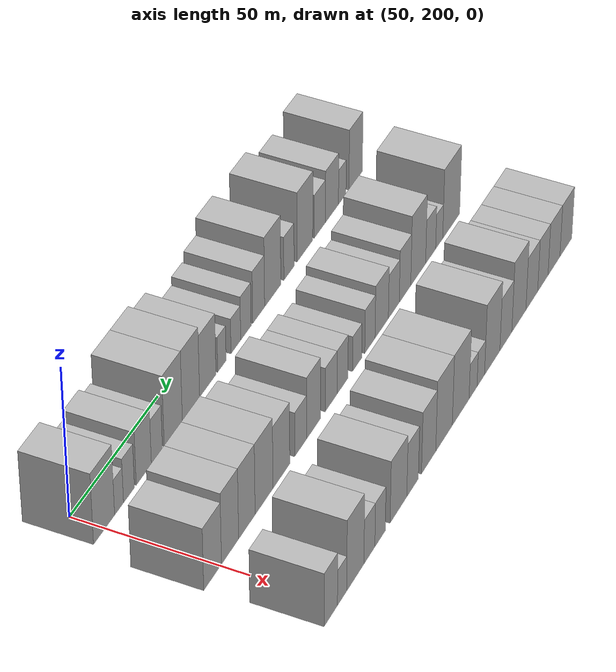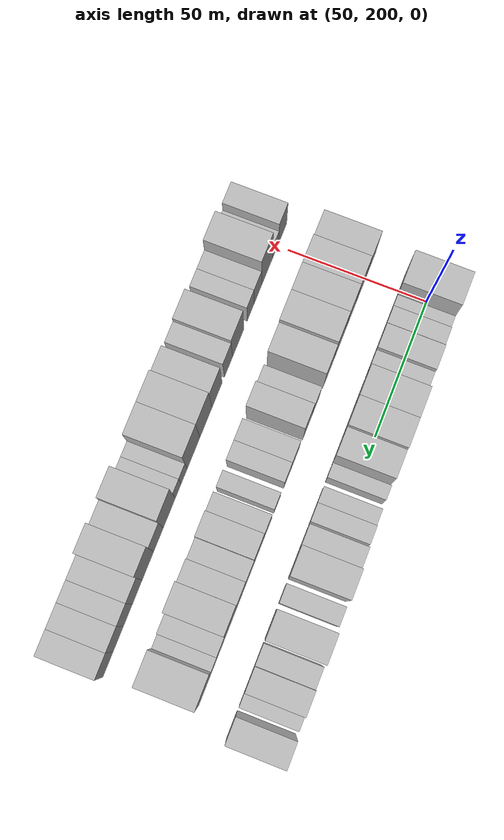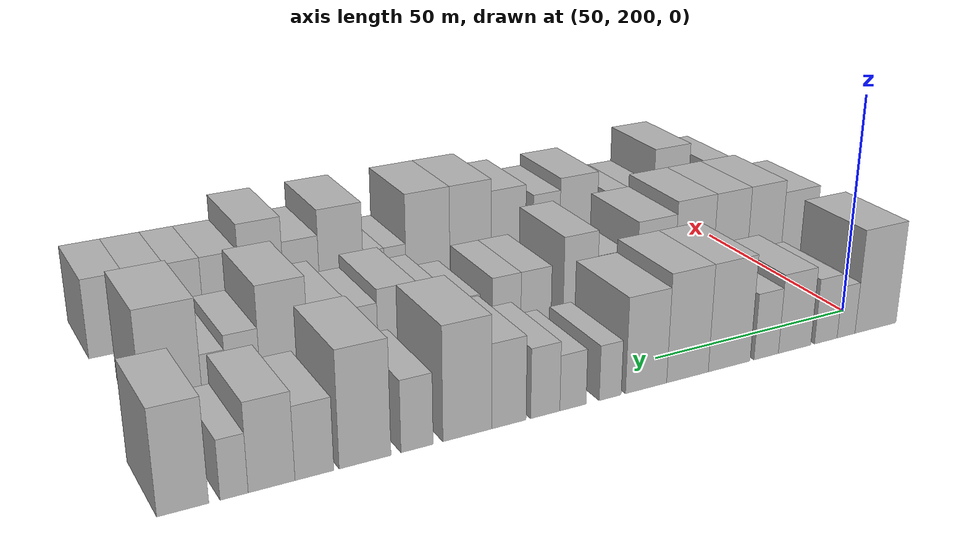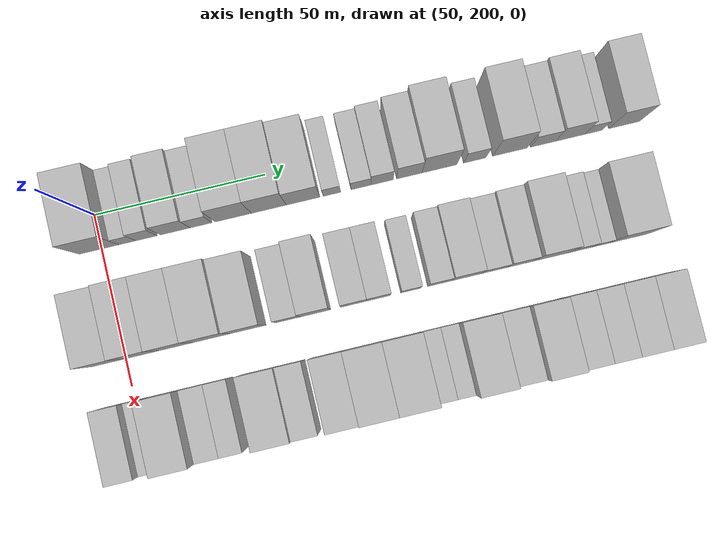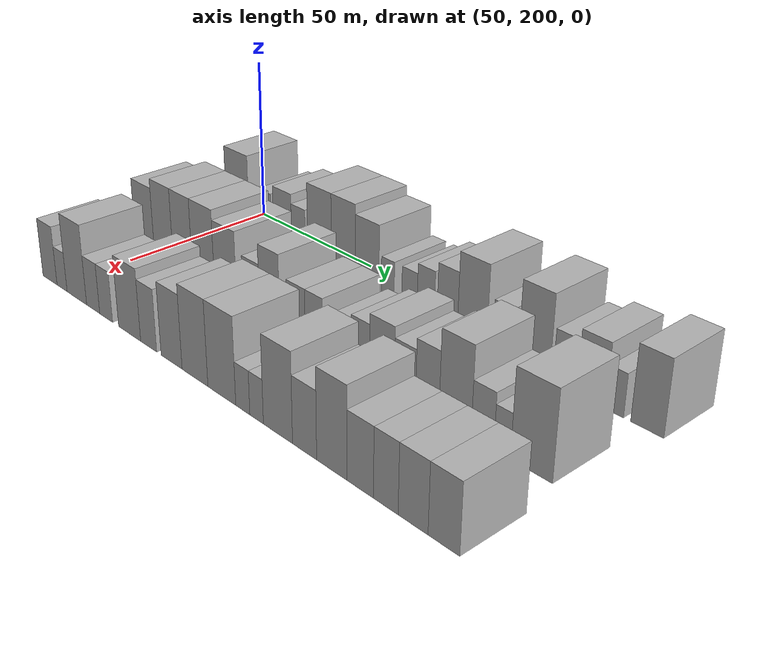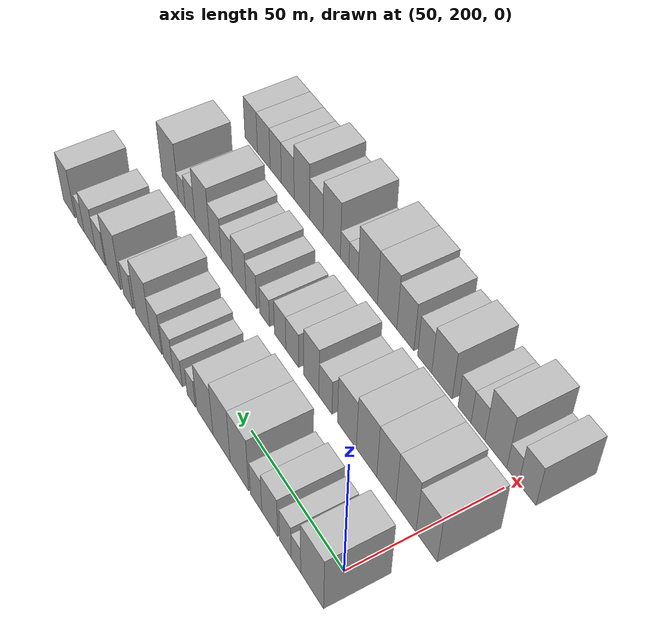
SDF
<sdf version="1.6">
 <world name="default">
  <model name="building_56">
   <static>1</static>
   <pose>50.0000 199.3849 0 0.000000 0.000000 0.000000</pose>
   <link name="link">
    <pose>0 0 12.00 0 0 0</pose>
    <collision name="collision"><geometry><box><size>20.0000 11.5961 24.0000</size></box></geometry></collision>
    <visual name="visual">
     <cast_shadows>0</cast_shadows>
     <geometry><box><size>20.0000 11.5961 24.0000</size></box></geometry>
     <material>
      <script>
       <uri>model://HANNAS_wall/materials/scripts</uri>
       <uri>model://HANNAS_wall/materials/textures</uri>
       <name>vrc/HANNAS_wall</name>
      </script>
     </material>
    </visual>
   </link>
  </model>
  <model name="building_57">
   <static>1</static>
   <pose>50.0000 207.6566 0 0.000000 0.000000 0.000000</pose>
   <link name="link">
    <pose>0 0 6.00 0 0 0</pose>
    <collision name="collision"><geometry><box><size>20.0000 4.9471 12.0000</size></box></geometry></collision>
    <visual name="visual">
     <cast_shadows>0</cast_shadows>
     <geometry><box><size>20.0000 4.9471 12.0000</size></box></geometry>
     <material>
      <script>
       <uri>model://HANNAS_wall/materials/scripts</uri>
       <uri>model://HANNAS_wall/materials/textures</uri>
       <name>vrc/HANNAS_wall</name>
      </script>
     </material>
    </visual>
   </link>
  </model>
  <model name="building_58">
   <static>1</static>
   <pose>50.0000 213.2028 0 0.000000 0.000000 0.000000</pose>
   <link name="link">
    <pose>0 0 7.50 0 0 0</pose>
    <collision name="collision"><geometry><box><size>20.0000 6.1455 15.0000</size></box></geometry></collision>
    <visual name="visual">
     <cast_shadows>0</cast_shadows>
     <geometry><box><size>20.0000 6.1455 15.0000</size></box></geometry>
     <material>
      <script>
       <uri>model://HANNAS_wall/materials/scripts</uri>
       <uri>model://HANNAS_wall/materials/textures</uri>
       <name>vrc/HANNAS_wall</name>
      </script>
     </material>
    </visual>
   </link>
  </model>
  <model name="building_59">
   <static>1</static>
   <pose>50.0000 221.5841 0 0.000000 0.000000 0.000000</pose>
   <link name="link">
    <pose>0 0 9.00 0 0 0</pose>
    <collision name="collision"><geometry><box><size>20.0000 8.6170 18.0000</size></box></geometry></collision>
    <visual name="visual">
     <cast_shadows>0</cast_shadows>
     <geometry><box><size>20.0000 8.6170 18.0000</size></box></geometry>
     <material>
      <script>
       <uri>model://HANNAS_wall/materials/scripts</uri>
       <uri>model://HANNAS_wall/materials/textures</uri>
       <name>vrc/HANNAS_wall</name>
      </script>
     </material>
    </visual>
   </link>
  </model>
  <model name="building_60">
   <static>1</static>
   <pose>50.0000 229.0707 0 0.000000 0.000000 0.000000</pose>
   <link name="link">
    <pose>0 0 7.50 0 0 0</pose>
    <collision name="collision"><geometry><box><size>20.0000 6.3564 15.0000</size></box></geometry></collision>
    <visual name="visual">
     <cast_shadows>0</cast_shadows>
     <geometry><box><size>20.0000 6.3564 15.0000</size></box></geometry>
     <material>
      <script>
       <uri>model://HANNAS_wall/materials/scripts</uri>
       <uri>model://HANNAS_wall/materials/textures</uri>
       <name>vrc/HANNAS_wall</name>
      </script>
     </material>
    </visual>
   </link>
  </model>
  <model name="building_61">
   <static>1</static>
   <pose>50.0000 238.5406 0 0.000000 0.000000 0.000000</pose>
   <link name="link">
    <pose>0 0 12.00 0 0 0</pose>
    <collision name="collision"><geometry><box><size>20.0000 10.5833 24.0000</size></box></geometry></collision>
    <visual name="visual">
     <cast_shadows>0</cast_shadows>
     <geometry><box><size>20.0000 10.5833 24.0000</size></box></geometry>
     <material>
      <script>
       <uri>model://HANNAS_wall/materials/scripts</uri>
       <uri>model://HANNAS_wall/materials/textures</uri>
       <name>vrc/HANNAS_wall</name>
      </script>
     </material>
    </visual>
   </link>
  </model>
  <model name="building_62">
   <static>1</static>
   <pose>50.0000 248.9387 0 0.000000 0.000000 0.000000</pose>
   <link name="link">
    <pose>0 0 12.00 0 0 0</pose>
    <collision name="collision"><geometry><box><size>20.0000 10.2129 24.0000</size></box></geometry></collision>
    <visual name="visual">
     <cast_shadows>0</cast_shadows>
     <geometry><box><size>20.0000 10.2129 24.0000</size></box></geometry>
     <material>
      <script>
       <uri>model://HANNAS_wall/materials/scripts</uri>
       <uri>model://HANNAS_wall/materials/textures</uri>
       <name>vrc/HANNAS_wall</name>
      </script>
     </material>
    </visual>
   </link>
  </model>
  <model name="building_63">
   <static>1</static>
   <pose>50.0000 258.9573 0 0.000000 0.000000 0.000000</pose>
   <link name="link">
    <pose>0 0 10.50 0 0 0</pose>
    <collision name="collision"><geometry><box><size>20.0000 9.8242 21.0000</size></box></geometry></collision>
    <visual name="visual">
     <cast_shadows>0</cast_shadows>
     <geometry><box><size>20.0000 9.8242 21.0000</size></box></geometry>
     <material>
      <script>
       <uri>model://HANNAS_wall/materials/scripts</uri>
       <uri>model://HANNAS_wall/materials/textures</uri>
       <name>vrc/HANNAS_wall</name>
      </script>
     </material>
    </visual>
   </link>
  </model>
  <model name="building_64">
   <static>1</static>
   <pose>50.0000 267.4243 0 0.000000 0.000000 0.000000</pose>
   <link name="link">
    <pose>0 0 6.00 0 0 0</pose>
    <collision name="collision"><geometry><box><size>20.0000 5.1098 12.0000</size></box></geometry></collision>
    <visual name="visual">
     <cast_shadows>0</cast_shadows>
     <geometry><box><size>20.0000 5.1098 12.0000</size></box></geometry>
     <material>
      <script>
       <uri>model://HANNAS_wall/materials/scripts</uri>
       <uri>model://HANNAS_wall/materials/textures</uri>
       <name>vrc/HANNAS_wall</name>
      </script>
     </material>
    </visual>
   </link>
  </model>
  <model name="building_65">
   <static>1</static>
   <pose>50.0000 275.9501 0 0.000000 0.000000 0.000000</pose>
   <link name="link">
    <pose>0 0 6.00 0 0 0</pose>
    <collision name="collision"><geometry><box><size>20.0000 5.9419 12.0000</size></box></geometry></collision>
    <visual name="visual">
     <cast_shadows>0</cast_shadows>
     <geometry><box><size>20.0000 5.9419 12.0000</size></box></geometry>
     <material>
      <script>
       <uri>model://HANNAS_wall/materials/scripts</uri>
       <uri>model://HANNAS_wall/materials/textures</uri>
       <name>vrc/HANNAS_wall</name>
      </script>
     </material>
    </visual>
   </link>
  </model>
  <model name="building_66">
   <static>1</static>
   <pose>50.0000 282.1559 0 0.000000 0.000000 0.000000</pose>
   <link name="link">
    <pose>0 0 7.50 0 0 0</pose>
    <collision name="collision"><geometry><box><size>20.0000 6.4696 15.0000</size></box></geometry></collision>
    <visual name="visual">
     <cast_shadows>0</cast_shadows>
     <geometry><box><size>20.0000 6.4696 15.0000</size></box></geometry>
     <material>
      <script>
       <uri>model://HANNAS_wall/materials/scripts</uri>
       <uri>model://HANNAS_wall/materials/textures</uri>
       <name>vrc/HANNAS_wall</name>
      </script>
     </material>
    </visual>
   </link>
  </model>
  <model name="building_67">
   <static>1</static>
   <pose>50.0000 290.1104 0 0.000000 0.000000 0.000000</pose>
   <link name="link">
    <pose>0 0 9.00 0 0 0</pose>
    <collision name="collision"><geometry><box><size>20.0000 7.4394 18.0000</size></box></geometry></collision>
    <visual name="visual">
     <cast_shadows>0</cast_shadows>
     <geometry><box><size>20.0000 7.4394 18.0000</size></box></geometry>
     <material>
      <script>
       <uri>model://HANNAS_wall/materials/scripts</uri>
       <uri>model://HANNAS_wall/materials/textures</uri>
       <name>vrc/HANNAS_wall</name>
      </script>
     </material>
    </visual>
   </link>
  </model>
  <model name="building_68">
   <static>1</static>
   <pose>50.0000 298.9630 0 0.000000 0.000000 0.000000</pose>
   <link name="link">
    <pose>0 0 12.00 0 0 0</pose>
    <collision name="collision"><geometry><box><size>20.0000 10.2657 24.0000</size></box></geometry></collision>
    <visual name="visual">
     <cast_shadows>0</cast_shadows>
     <geometry><box><size>20.0000 10.2657 24.0000</size></box></geometry>
     <material>
      <script>
       <uri>model://HANNAS_wall/materials/scripts</uri>
       <uri>model://HANNAS_wall/materials/textures</uri>
       <name>vrc/HANNAS_wall</name>
      </script>
     </material>
    </visual>
   </link>
  </model>
  <model name="building_69">
   <static>1</static>
   <pose>50.0000 309.3733 0 0.000000 0.000000 0.000000</pose>
   <link name="link">
    <pose>0 0 7.50 0 0 0</pose>
    <collision name="collision"><geometry><box><size>20.0000 6.5549 15.0000</size></box></geometry></collision>
    <visual name="visual">
     <cast_shadows>0</cast_shadows>
     <geometry><box><size>20.0000 6.5549 15.0000</size></box></geometry>
     <material>
      <script>
       <uri>model://HANNAS_wall/materials/scripts</uri>
       <uri>model://HANNAS_wall/materials/textures</uri>
       <name>vrc/HANNAS_wall</name>
      </script>
     </material>
    </visual>
   </link>
  </model>
  <model name="building_70">
   <static>1</static>
   <pose>50.0000 319.7446 0 0.000000 0.000000 0.000000</pose>
   <link name="link">
    <pose>0 0 12.00 0 0 0</pose>
    <collision name="collision"><geometry><box><size>20.0000 10.1878 24.0000</size></box></geometry></collision>
    <visual name="visual">
     <cast_shadows>0</cast_shadows>
     <geometry><box><size>20.0000 10.1878 24.0000</size></box></geometry>
     <material>
      <script>
       <uri>model://HANNAS_wall/materials/scripts</uri>
       <uri>model://HANNAS_wall/materials/textures</uri>
       <name>vrc/HANNAS_wall</name>
      </script>
     </material>
    </visual>
   </link>
  </model>
  <model name="building_71">
   <static>1</static>
   <pose>50.0000 329.5365 0 0.000000 0.000000 0.000000</pose>
   <link name="link">
    <pose>0 0 7.50 0 0 0</pose>
    <collision name="collision"><geometry><box><size>20.0000 7.3959 15.0000</size></box></geometry></collision>
    <visual name="visual">
     <cast_shadows>0</cast_shadows>
     <geometry><box><size>20.0000 7.3959 15.0000</size></box></geometry>
     <material>
      <script>
       <uri>model://HANNAS_wall/materials/scripts</uri>
       <uri>model://HANNAS_wall/materials/textures</uri>
       <name>vrc/HANNAS_wall</name>
      </script>
     </material>
    </visual>
   </link>
  </model>
  <model name="building_72">
   <static>1</static>
   <pose>50.0000 337.5648 0 0.000000 0.000000 0.000000</pose>
   <link name="link">
    <pose>0 0 9.00 0 0 0</pose>
    <collision name="collision"><geometry><box><size>20.0000 8.6607 18.0000</size></box></geometry></collision>
    <visual name="visual">
     <cast_shadows>0</cast_shadows>
     <geometry><box><size>20.0000 8.6607 18.0000</size></box></geometry>
     <material>
      <script>
       <uri>model://HANNAS_wall/materials/scripts</uri>
       <uri>model://HANNAS_wall/materials/textures</uri>
       <name>vrc/HANNAS_wall</name>
      </script>
     </material>
    </visual>
   </link>
  </model>
  <model name="building_73">
   <static>1</static>
   <pose>50.0000 344.4485 0 0.000000 0.000000 0.000000</pose>
   <link name="link">
    <pose>0 0 6.00 0 0 0</pose>
    <collision name="collision"><geometry><box><size>20.0000 5.1066 12.0000</size></box></geometry></collision>
    <visual name="visual">
     <cast_shadows>0</cast_shadows>
     <geometry><box><size>20.0000 5.1066 12.0000</size></box></geometry>
     <material>
      <script>
       <uri>model://HANNAS_wall/materials/scripts</uri>
       <uri>model://HANNAS_wall/materials/textures</uri>
       <name>vrc/HANNAS_wall</name>
      </script>
     </material>
    </visual>
   </link>
  </model>
  <model name="building_74">
   <static>1</static>
   <pose>50.0000 353.5780 0 0.000000 0.000000 0.000000</pose>
   <link name="link">
    <pose>0 0 10.50 0 0 0</pose>
    <collision name="collision"><geometry><box><size>20.0000 9.1524 21.0000</size></box></geometry></collision>
    <visual name="visual">
     <cast_shadows>0</cast_shadows>
     <geometry><box><size>20.0000 9.1524 21.0000</size></box></geometry>
     <material>
      <script>
       <uri>model://HANNAS_wall/materials/scripts</uri>
       <uri>model://HANNAS_wall/materials/textures</uri>
       <name>vrc/HANNAS_wall</name>
      </script>
     </material>
    </visual>
   </link>
  </model>
  <model name="building_130">
   <static>1</static>
   <pose>82.0000 195.4188 0 0.000000 0.000000 0.000000</pose>
   <link name="link">
    <pose>0 0 10.50 0 0 0</pose>
    <collision name="collision"><geometry><box><size>20.0000 10.0955 21.0000</size></box></geometry></collision>
    <visual name="visual">
     <cast_shadows>0</cast_shadows>
     <geometry><box><size>20.0000 10.0955 21.0000</size></box></geometry>
     <material>
      <script>
       <uri>model://HANNAS_wall/materials/scripts</uri>
       <uri>model://HANNAS_wall/materials/textures</uri>
       <name>vrc/HANNAS_wall</name>
      </script>
     </material>
    </visual>
   </link>
  </model>
  <model name="building_131">
   <static>1</static>
   <pose>82.0000 205.4018 0 0.000000 0.000000 0.000000</pose>
   <link name="link">
    <pose>0 0 12.00 0 0 0</pose>
    <collision name="collision"><geometry><box><size>20.0000 9.8704 24.0000</size></box></geometry></collision>
    <visual name="visual">
     <cast_shadows>0</cast_shadows>
     <geometry><box><size>20.0000 9.8704 24.0000</size></box></geometry>
     <material>
      <script>
       <uri>model://HANNAS_wall/materials/scripts</uri>
       <uri>model://HANNAS_wall/materials/textures</uri>
       <name>vrc/HANNAS_wall</name>
      </script>
     </material>
    </visual>
   </link>
  </model>
  <model name="building_132">
   <static>1</static>
   <pose>82.0000 215.1493 0 0.000000 0.000000 0.000000</pose>
   <link name="link">
    <pose>0 0 12.00 0 0 0</pose>
    <collision name="collision"><geometry><box><size>20.0000 9.6247 24.0000</size></box></geometry></collision>
    <visual name="visual">
     <cast_shadows>0</cast_shadows>
     <geometry><box><size>20.0000 9.6247 24.0000</size></box></geometry>
     <material>
      <script>
       <uri>model://HANNAS_wall/materials/scripts</uri>
       <uri>model://HANNAS_wall/materials/textures</uri>
       <name>vrc/HANNAS_wall</name>
      </script>
     </material>
    </visual>
   </link>
  </model>
  <model name="building_133">
   <static>1</static>
   <pose>82.0000 225.2571 0 0.000000 0.000000 0.000000</pose>
   <link name="link">
    <pose>0 0 12.00 0 0 0</pose>
    <collision name="collision"><geometry><box><size>20.0000 10.5908 24.0000</size></box></geometry></collision>
    <visual name="visual">
     <cast_shadows>0</cast_shadows>
     <geometry><box><size>20.0000 10.5908 24.0000</size></box></geometry>
     <material>
      <script>
       <uri>model://HANNAS_wall/materials/scripts</uri>
       <uri>model://HANNAS_wall/materials/textures</uri>
       <name>vrc/HANNAS_wall</name>
      </script>
     </material>
    </visual>
   </link>
  </model>
  <model name="building_134">
   <static>1</static>
   <pose>82.0000 235.6216 0 0.000000 0.000000 0.000000</pose>
   <link name="link">
    <pose>0 0 10.50 0 0 0</pose>
    <collision name="collision"><geometry><box><size>20.0000 10.1381 21.0000</size></box></geometry></collision>
    <visual name="visual">
     <cast_shadows>0</cast_shadows>
     <geometry><box><size>20.0000 10.1381 21.0000</size></box></geometry>
     <material>
      <script>
       <uri>model://HANNAS_wall/materials/scripts</uri>
       <uri>model://HANNAS_wall/materials/textures</uri>
       <name>vrc/HANNAS_wall</name>
      </script>
     </material>
    </visual>
   </link>
  </model>
  <model name="building_135">
   <static>1</static>
   <pose>82.0000 247.3060 0 0.000000 0.000000 0.000000</pose>
   <link name="link">
    <pose>0 0 7.50 0 0 0</pose>
    <collision name="collision"><geometry><box><size>20.0000 7.2306 15.0000</size></box></geometry></collision>
    <visual name="visual">
     <cast_shadows>0</cast_shadows>
     <geometry><box><size>20.0000 7.2306 15.0000</size></box></geometry>
     <material>
      <script>
       <uri>model://HANNAS_wall/materials/scripts</uri>
       <uri>model://HANNAS_wall/materials/textures</uri>
       <name>vrc/HANNAS_wall</name>
      </script>
     </material>
    </visual>
   </link>
  </model>
  <model name="building_136">
   <static>1</static>
   <pose>82.0000 255.2145 0 0.000000 0.000000 0.000000</pose>
   <link name="link">
    <pose>0 0 10.50 0 0 0</pose>
    <collision name="collision"><geometry><box><size>20.0000 8.5865 21.0000</size></box></geometry></collision>
    <visual name="visual">
     <cast_shadows>0</cast_shadows>
     <geometry><box><size>20.0000 8.5865 21.0000</size></box></geometry>
     <material>
      <script>
       <uri>model://HANNAS_wall/materials/scripts</uri>
       <uri>model://HANNAS_wall/materials/textures</uri>
       <name>vrc/HANNAS_wall</name>
      </script>
     </material>
    </visual>
   </link>
  </model>
  <model name="building_137">
   <static>1</static>
   <pose>82.0000 266.2501 0 0.000000 0.000000 0.000000</pose>
   <link name="link">
    <pose>0 0 7.50 0 0 0</pose>
    <collision name="collision"><geometry><box><size>20.0000 7.4847 15.0000</size></box></geometry></collision>
    <visual name="visual">
     <cast_shadows>0</cast_shadows>
     <geometry><box><size>20.0000 7.4847 15.0000</size></box></geometry>
     <material>
      <script>
       <uri>model://HANNAS_wall/materials/scripts</uri>
       <uri>model://HANNAS_wall/materials/textures</uri>
       <name>vrc/HANNAS_wall</name>
      </script>
     </material>
    </visual>
   </link>
  </model>
  <model name="building_138">
   <static>1</static>
   <pose>82.0000 273.4355 0 0.000000 0.000000 0.000000</pose>
   <link name="link">
    <pose>0 0 7.50 0 0 0</pose>
    <collision name="collision"><geometry><box><size>20.0000 6.8861 15.0000</size></box></geometry></collision>
    <visual name="visual">
     <cast_shadows>0</cast_shadows>
     <geometry><box><size>20.0000 6.8861 15.0000</size></box></geometry>
     <material>
      <script>
       <uri>model://HANNAS_wall/materials/scripts</uri>
       <uri>model://HANNAS_wall/materials/textures</uri>
       <name>vrc/HANNAS_wall</name>
      </script>
     </material>
    </visual>
   </link>
  </model>
  <model name="building_139">
   <static>1</static>
   <pose>82.0000 282.8169 0 0.000000 0.000000 0.000000</pose>
   <link name="link">
    <pose>0 0 6.00 0 0 0</pose>
    <collision name="collision"><geometry><box><size>20.0000 5.8766 12.0000</size></box></geometry></collision>
    <visual name="visual">
     <cast_shadows>0</cast_shadows>
     <geometry><box><size>20.0000 5.8766 12.0000</size></box></geometry>
     <material>
      <script>
       <uri>model://HANNAS_wall/materials/scripts</uri>
       <uri>model://HANNAS_wall/materials/textures</uri>
       <name>vrc/HANNAS_wall</name>
      </script>
     </material>
    </visual>
   </link>
  </model>
  <model name="building_140">
   <static>1</static>
   <pose>82.0000 291.0930 0 0.000000 0.000000 0.000000</pose>
   <link name="link">
    <pose>0 0 7.50 0 0 0</pose>
    <collision name="collision"><geometry><box><size>20.0000 6.6755 15.0000</size></box></geometry></collision>
    <visual name="visual">
     <cast_shadows>0</cast_shadows>
     <geometry><box><size>20.0000 6.6755 15.0000</size></box></geometry>
     <material>
      <script>
       <uri>model://HANNAS_wall/materials/scripts</uri>
       <uri>model://HANNAS_wall/materials/textures</uri>
       <name>vrc/HANNAS_wall</name>
      </script>
     </material>
    </visual>
   </link>
  </model>
  <model name="building_141">
   <static>1</static>
   <pose>82.0000 298.8240 0 0.000000 0.000000 0.000000</pose>
   <link name="link">
    <pose>0 0 9.00 0 0 0</pose>
    <collision name="collision"><geometry><box><size>20.0000 8.7866 18.0000</size></box></geometry></collision>
    <visual name="visual">
     <cast_shadows>0</cast_shadows>
     <geometry><box><size>20.0000 8.7866 18.0000</size></box></geometry>
     <material>
      <script>
       <uri>model://HANNAS_wall/materials/scripts</uri>
       <uri>model://HANNAS_wall/materials/textures</uri>
       <name>vrc/HANNAS_wall</name>
      </script>
     </material>
    </visual>
   </link>
  </model>
  <model name="building_142">
   <static>1</static>
   <pose>82.0000 306.8493 0 0.000000 0.000000 0.000000</pose>
   <link name="link">
    <pose>0 0 7.50 0 0 0</pose>
    <collision name="collision"><geometry><box><size>20.0000 7.2640 15.0000</size></box></geometry></collision>
    <visual name="visual">
     <cast_shadows>0</cast_shadows>
     <geometry><box><size>20.0000 7.2640 15.0000</size></box></geometry>
     <material>
      <script>
       <uri>model://HANNAS_wall/materials/scripts</uri>
       <uri>model://HANNAS_wall/materials/textures</uri>
       <name>vrc/HANNAS_wall</name>
      </script>
     </material>
    </visual>
   </link>
  </model>
  <model name="building_143">
   <static>1</static>
   <pose>82.0000 314.3431 0 0.000000 0.000000 0.000000</pose>
   <link name="link">
    <pose>0 0 9.00 0 0 0</pose>
    <collision name="collision"><geometry><box><size>20.0000 7.7236 18.0000</size></box></geometry></collision>
    <visual name="visual">
     <cast_shadows>0</cast_shadows>
     <geometry><box><size>20.0000 7.7236 18.0000</size></box></geometry>
     <material>
      <script>
       <uri>model://HANNAS_wall/materials/scripts</uri>
       <uri>model://HANNAS_wall/materials/textures</uri>
       <name>vrc/HANNAS_wall</name>
      </script>
     </material>
    </visual>
   </link>
  </model>
  <model name="building_144">
   <static>1</static>
   <pose>82.0000 323.2901 0 0.000000 0.000000 0.000000</pose>
   <link name="link">
    <pose>0 0 12.00 0 0 0</pose>
    <collision name="collision"><geometry><box><size>20.0000 10.1705 24.0000</size></box></geometry></collision>
    <visual name="visual">
     <cast_shadows>0</cast_shadows>
     <geometry><box><size>20.0000 10.1705 24.0000</size></box></geometry>
     <material>
      <script>
       <uri>model://HANNAS_wall/materials/scripts</uri>
       <uri>model://HANNAS_wall/materials/textures</uri>
       <name>vrc/HANNAS_wall</name>
      </script>
     </material>
    </visual>
   </link>
  </model>
  <model name="building_145">
   <static>1</static>
   <pose>82.0000 331.8244 0 0.000000 0.000000 0.000000</pose>
   <link name="link">
    <pose>0 0 7.50 0 0 0</pose>
    <collision name="collision"><geometry><box><size>20.0000 6.8981 15.0000</size></box></geometry></collision>
    <visual name="visual">
     <cast_shadows>0</cast_shadows>
     <geometry><box><size>20.0000 6.8981 15.0000</size></box></geometry>
     <material>
      <script>
       <uri>model://HANNAS_wall/materials/scripts</uri>
       <uri>model://HANNAS_wall/materials/textures</uri>
       <name>vrc/HANNAS_wall</name>
      </script>
     </material>
    </visual>
   </link>
  </model>
  <model name="building_146">
   <static>1</static>
   <pose>82.0000 337.7239 0 0.000000 0.000000 0.000000</pose>
   <link name="link">
    <pose>0 0 6.00 0 0 0</pose>
    <collision name="collision"><geometry><box><size>20.0000 4.9009 12.0000</size></box></geometry></collision>
    <visual name="visual">
     <cast_shadows>0</cast_shadows>
     <geometry><box><size>20.0000 4.9009 12.0000</size></box></geometry>
     <material>
      <script>
       <uri>model://HANNAS_wall/materials/scripts</uri>
       <uri>model://HANNAS_wall/materials/textures</uri>
       <name>vrc/HANNAS_wall</name>
      </script>
     </material>
    </visual>
   </link>
  </model>
  <model name="building_147">
   <static>1</static>
   <pose>82.0000 346.1405 0 0.000000 0.000000 0.000000</pose>
   <link name="link">
    <pose>0 0 12.00 0 0 0</pose>
    <collision name="collision"><geometry><box><size>20.0000 11.9322 24.0000</size></box></geometry></collision>
    <visual name="visual">
     <cast_shadows>0</cast_shadows>
     <geometry><box><size>20.0000 11.9322 24.0000</size></box></geometry>
     <material>
      <script>
       <uri>model://HANNAS_wall/materials/scripts</uri>
       <uri>model://HANNAS_wall/materials/textures</uri>
       <name>vrc/HANNAS_wall</name>
      </script>
     </material>
    </visual>
   </link>
  </model>
  <model name="building_205">
   <static>1</static>
   <pose>114.0000 195.2941 0 0.000000 0.000000 0.000000</pose>
   <link name="link">
    <pose>0 0 9.00 0 0 0</pose>
    <collision name="collision"><geometry><box><size>20.0000 7.8704 18.0000</size></box></geometry></collision>
    <visual name="visual">
     <cast_shadows>0</cast_shadows>
     <geometry><box><size>20.0000 7.8704 18.0000</size></box></geometry>
     <material>
      <script>
       <uri>model://HANNAS_wall/materials/scripts</uri>
       <uri>model://HANNAS_wall/materials/textures</uri>
       <name>vrc/HANNAS_wall</name>
      </script>
     </material>
    </visual>
   </link>
  </model>
  <model name="building_206">
   <static>1</static>
   <pose>114.0000 201.9797 0 0.000000 0.000000 0.000000</pose>
   <link name="link">
    <pose>0 0 6.00 0 0 0</pose>
    <collision name="collision"><geometry><box><size>20.0000 5.5008 12.0000</size></box></geometry></collision>
    <visual name="visual">
     <cast_shadows>0</cast_shadows>
     <geometry><box><size>20.0000 5.5008 12.0000</size></box></geometry>
     <material>
      <script>
       <uri>model://HANNAS_wall/materials/scripts</uri>
       <uri>model://HANNAS_wall/materials/textures</uri>
       <name>vrc/HANNAS_wall</name>
      </script>
     </material>
    </visual>
   </link>
  </model>
  <model name="building_207">
   <static>1</static>
   <pose>114.0000 209.9341 0 0.000000 0.000000 0.000000</pose>
   <link name="link">
    <pose>0 0 12.00 0 0 0</pose>
    <collision name="collision"><geometry><box><size>20.0000 10.4080 24.0000</size></box></geometry></collision>
    <visual name="visual">
     <cast_shadows>0</cast_shadows>
     <geometry><box><size>20.0000 10.4080 24.0000</size></box></geometry>
     <material>
      <script>
       <uri>model://HANNAS_wall/materials/scripts</uri>
       <uri>model://HANNAS_wall/materials/textures</uri>
       <name>vrc/HANNAS_wall</name>
      </script>
     </material>
    </visual>
   </link>
  </model>
  <model name="building_208">
   <static>1</static>
   <pose>114.0000 218.5087 0 0.000000 0.000000 0.000000</pose>
   <link name="link">
    <pose>0 0 7.50 0 0 0</pose>
    <collision name="collision"><geometry><box><size>20.0000 6.7413 15.0000</size></box></geometry></collision>
    <visual name="visual">
     <cast_shadows>0</cast_shadows>
     <geometry><box><size>20.0000 6.7413 15.0000</size></box></geometry>
     <material>
      <script>
       <uri>model://HANNAS_wall/materials/scripts</uri>
       <uri>model://HANNAS_wall/materials/textures</uri>
       <name>vrc/HANNAS_wall</name>
      </script>
     </material>
    </visual>
   </link>
  </model>
  <model name="building_209">
   <static>1</static>
   <pose>114.0000 225.0927 0 0.000000 0.000000 0.000000</pose>
   <link name="link">
    <pose>0 0 7.50 0 0 0</pose>
    <collision name="collision"><geometry><box><size>20.0000 6.4266 15.0000</size></box></geometry></collision>
    <visual name="visual">
     <cast_shadows>0</cast_shadows>
     <geometry><box><size>20.0000 6.4266 15.0000</size></box></geometry>
     <material>
      <script>
       <uri>model://HANNAS_wall/materials/scripts</uri>
       <uri>model://HANNAS_wall/materials/textures</uri>
       <name>vrc/HANNAS_wall</name>
      </script>
     </material>
    </visual>
   </link>
  </model>
  <model name="building_210">
   <static>1</static>
   <pose>114.0000 236.5462 0 0.000000 0.000000 0.000000</pose>
   <link name="link">
    <pose>0 0 10.50 0 0 0</pose>
    <collision name="collision"><geometry><box><size>20.0000 10.4806 21.0000</size></box></geometry></collision>
    <visual name="visual">
     <cast_shadows>0</cast_shadows>
     <geometry><box><size>20.0000 10.4806 21.0000</size></box></geometry>
     <material>
      <script>
       <uri>model://HANNAS_wall/materials/scripts</uri>
       <uri>model://HANNAS_wall/materials/textures</uri>
       <name>vrc/HANNAS_wall</name>
      </script>
     </material>
    </visual>
   </link>
  </model>
  <model name="building_211">
   <static>1</static>
   <pose>114.0000 245.4736 0 0.000000 0.000000 0.000000</pose>
   <link name="link">
    <pose>0 0 9.00 0 0 0</pose>
    <collision name="collision"><geometry><box><size>20.0000 7.3740 18.0000</size></box></geometry></collision>
    <visual name="visual">
     <cast_shadows>0</cast_shadows>
     <geometry><box><size>20.0000 7.3740 18.0000</size></box></geometry>
     <material>
      <script>
       <uri>model://HANNAS_wall/materials/scripts</uri>
       <uri>model://HANNAS_wall/materials/textures</uri>
       <name>vrc/HANNAS_wall</name>
      </script>
     </material>
    </visual>
   </link>
  </model>
  <model name="building_212">
   <static>1</static>
   <pose>114.0000 255.7742 0 0.000000 0.000000 0.000000</pose>
   <link name="link">
    <pose>0 0 10.50 0 0 0</pose>
    <collision name="collision"><geometry><box><size>20.0000 9.2272 21.0000</size></box></geometry></collision>
    <visual name="visual">
     <cast_shadows>0</cast_shadows>
     <geometry><box><size>20.0000 9.2272 21.0000</size></box></geometry>
     <material>
      <script>
       <uri>model://HANNAS_wall/materials/scripts</uri>
       <uri>model://HANNAS_wall/materials/textures</uri>
       <name>vrc/HANNAS_wall</name>
      </script>
     </material>
    </visual>
   </link>
  </model>
  <model name="building_213">
   <static>1</static>
   <pose>114.0000 265.8098 0 0.000000 0.000000 0.000000</pose>
   <link name="link">
    <pose>0 0 12.00 0 0 0</pose>
    <collision name="collision"><geometry><box><size>20.0000 10.8441 24.0000</size></box></geometry></collision>
    <visual name="visual">
     <cast_shadows>0</cast_shadows>
     <geometry><box><size>20.0000 10.8441 24.0000</size></box></geometry>
     <material>
      <script>
       <uri>model://HANNAS_wall/materials/scripts</uri>
       <uri>model://HANNAS_wall/materials/textures</uri>
       <name>vrc/HANNAS_wall</name>
      </script>
     </material>
    </visual>
   </link>
  </model>
  <model name="building_214">
   <static>1</static>
   <pose>114.0000 276.8120 0 0.000000 0.000000 0.000000</pose>
   <link name="link">
    <pose>0 0 12.00 0 0 0</pose>
    <collision name="collision"><geometry><box><size>20.0000 11.1604 24.0000</size></box></geometry></collision>
    <visual name="visual">
     <cast_shadows>0</cast_shadows>
     <geometry><box><size>20.0000 11.1604 24.0000</size></box></geometry>
     <material>
      <script>
       <uri>model://HANNAS_wall/materials/scripts</uri>
       <uri>model://HANNAS_wall/materials/textures</uri>
       <name>vrc/HANNAS_wall</name>
      </script>
     </material>
    </visual>
   </link>
  </model>
  <model name="building_215">
   <static>1</static>
   <pose>114.0000 285.0933 0 0.000000 0.000000 0.000000</pose>
   <link name="link">
    <pose>0 0 6.00 0 0 0</pose>
    <collision name="collision"><geometry><box><size>20.0000 5.4021 12.0000</size></box></geometry></collision>
    <visual name="visual">
     <cast_shadows>0</cast_shadows>
     <geometry><box><size>20.0000 5.4021 12.0000</size></box></geometry>
     <material>
      <script>
       <uri>model://HANNAS_wall/materials/scripts</uri>
       <uri>model://HANNAS_wall/materials/textures</uri>
       <name>vrc/HANNAS_wall</name>
      </script>
     </material>
    </visual>
   </link>
  </model>
  <model name="building_216">
   <static>1</static>
   <pose>114.0000 290.3398 0 0.000000 0.000000 0.000000</pose>
   <link name="link">
    <pose>0 0 6.00 0 0 0</pose>
    <collision name="collision"><geometry><box><size>20.0000 5.0908 12.0000</size></box></geometry></collision>
    <visual name="visual">
     <cast_shadows>0</cast_shadows>
     <geometry><box><size>20.0000 5.0908 12.0000</size></box></geometry>
     <material>
      <script>
       <uri>model://HANNAS_wall/materials/scripts</uri>
       <uri>model://HANNAS_wall/materials/textures</uri>
       <name>vrc/HANNAS_wall</name>
      </script>
     </material>
    </visual>
   </link>
  </model>
  <model name="building_217">
   <static>1</static>
   <pose>114.0000 298.1551 0 0.000000 0.000000 0.000000</pose>
   <link name="link">
    <pose>0 0 12.00 0 0 0</pose>
    <collision name="collision"><geometry><box><size>20.0000 10.5400 24.0000</size></box></geometry></collision>
    <visual name="visual">
     <cast_shadows>0</cast_shadows>
     <geometry><box><size>20.0000 10.5400 24.0000</size></box></geometry>
     <material>
      <script>
       <uri>model://HANNAS_wall/materials/scripts</uri>
       <uri>model://HANNAS_wall/materials/textures</uri>
       <name>vrc/HANNAS_wall</name>
      </script>
     </material>
    </visual>
   </link>
  </model>
  <model name="building_218">
   <static>1</static>
   <pose>114.0000 307.5886 0 0.000000 0.000000 0.000000</pose>
   <link name="link">
    <pose>0 0 9.00 0 0 0</pose>
    <collision name="collision"><geometry><box><size>20.0000 8.3268 18.0000</size></box></geometry></collision>
    <visual name="visual">
     <cast_shadows>0</cast_shadows>
     <geometry><box><size>20.0000 8.3268 18.0000</size></box></geometry>
     <material>
      <script>
       <uri>model://HANNAS_wall/materials/scripts</uri>
       <uri>model://HANNAS_wall/materials/textures</uri>
       <name>vrc/HANNAS_wall</name>
      </script>
     </material>
    </visual>
   </link>
  </model>
  <model name="building_219">
   <static>1</static>
   <pose>114.0000 316.7141 0 0.000000 0.000000 0.000000</pose>
   <link name="link">
    <pose>0 0 12.00 0 0 0</pose>
    <collision name="collision"><geometry><box><size>20.0000 9.9242 24.0000</size></box></geometry></collision>
    <visual name="visual">
     <cast_shadows>0</cast_shadows>
     <geometry><box><size>20.0000 9.9242 24.0000</size></box></geometry>
     <material>
      <script>
       <uri>model://HANNAS_wall/materials/scripts</uri>
       <uri>model://HANNAS_wall/materials/textures</uri>
       <name>vrc/HANNAS_wall</name>
      </script>
     </material>
    </visual>
   </link>
  </model>
  <model name="building_220">
   <static>1</static>
   <pose>114.0000 325.8768 0 0.000000 0.000000 0.000000</pose>
   <link name="link">
    <pose>0 0 9.00 0 0 0</pose>
    <collision name="collision"><geometry><box><size>20.0000 8.4014 18.0000</size></box></geometry></collision>
    <visual name="visual">
     <cast_shadows>0</cast_shadows>
     <geometry><box><size>20.0000 8.4014 18.0000</size></box></geometry>
     <material>
      <script>
       <uri>model://HANNAS_wall/materials/scripts</uri>
       <uri>model://HANNAS_wall/materials/textures</uri>
       <name>vrc/HANNAS_wall</name>
      </script>
     </material>
    </visual>
   </link>
  </model>
  <model name="building_221">
   <static>1</static>
   <pose>114.0000 333.8199 0 0.000000 0.000000 0.000000</pose>
   <link name="link">
    <pose>0 0 9.00 0 0 0</pose>
    <collision name="collision"><geometry><box><size>20.0000 7.4847 18.0000</size></box></geometry></collision>
    <visual name="visual">
     <cast_shadows>0</cast_shadows>
     <geometry><box><size>20.0000 7.4847 18.0000</size></box></geometry>
     <material>
      <script>
       <uri>model://HANNAS_wall/materials/scripts</uri>
       <uri>model://HANNAS_wall/materials/textures</uri>
       <name>vrc/HANNAS_wall</name>
      </script>
     </material>
    </visual>
   </link>
  </model>
  <model name="building_222">
   <static>1</static>
   <pose>114.0000 341.8952 0 0.000000 0.000000 0.000000</pose>
   <link name="link">
    <pose>0 0 9.00 0 0 0</pose>
    <collision name="collision"><geometry><box><size>20.0000 8.6660 18.0000</size></box></geometry></collision>
    <visual name="visual">
     <cast_shadows>0</cast_shadows>
     <geometry><box><size>20.0000 8.6660 18.0000</size></box></geometry>
     <material>
      <script>
       <uri>model://HANNAS_wall/materials/scripts</uri>
       <uri>model://HANNAS_wall/materials/textures</uri>
       <name>vrc/HANNAS_wall</name>
      </script>
     </material>
    </visual>
   </link>
  </model>
  <model name="building_223">
   <static>1</static>
   <pose>114.0000 350.6202 0 0.000000 0.000000 0.000000</pose>
   <link name="link">
    <pose>0 0 9.00 0 0 0</pose>
    <collision name="collision"><geometry><box><size>20.0000 8.7841 18.0000</size></box></geometry></collision>
    <visual name="visual">
     <cast_shadows>0</cast_shadows>
     <geometry><box><size>20.0000 8.7841 18.0000</size></box></geometry>
     <material>
      <script>
       <uri>model://HANNAS_wall/materials/scripts</uri>
       <uri>model://HANNAS_wall/materials/textures</uri>
       <name>vrc/HANNAS_wall</name>
      </script>
     </material>
    </visual>
   </link>
  </model>
 </world>
</sdf>
